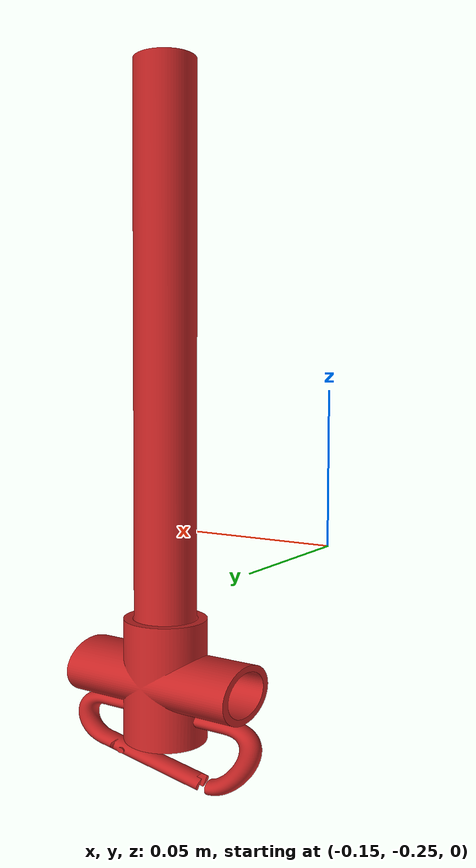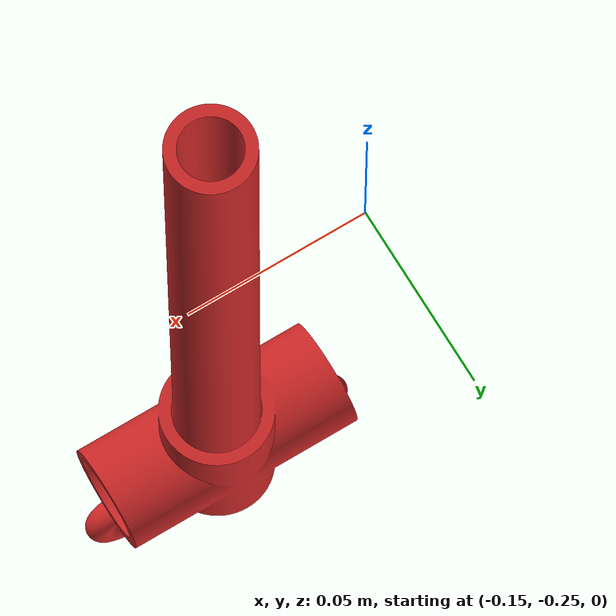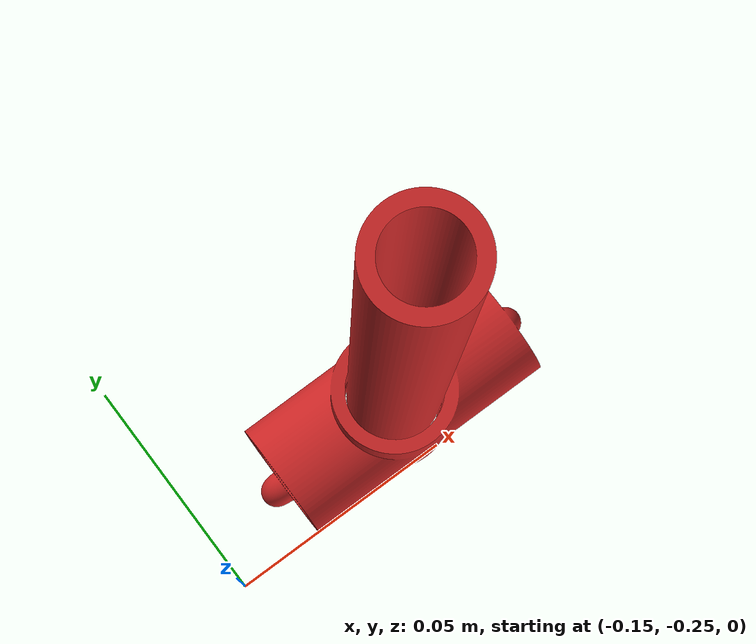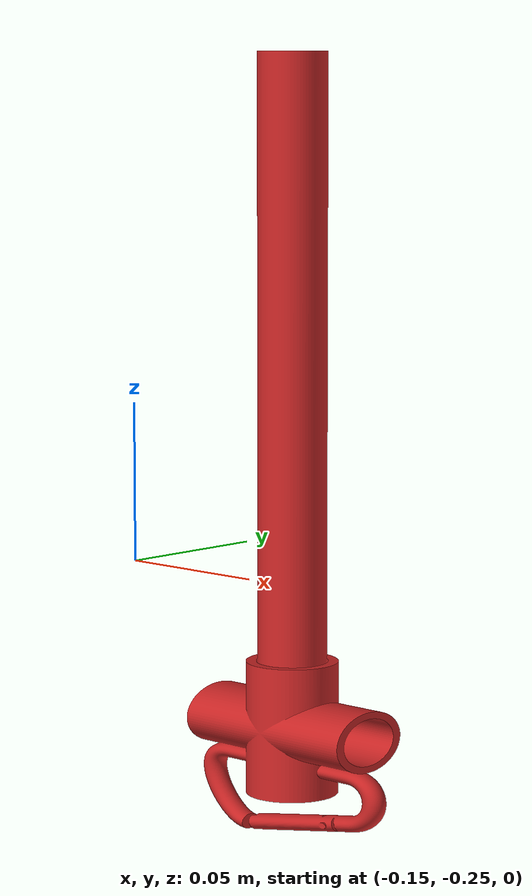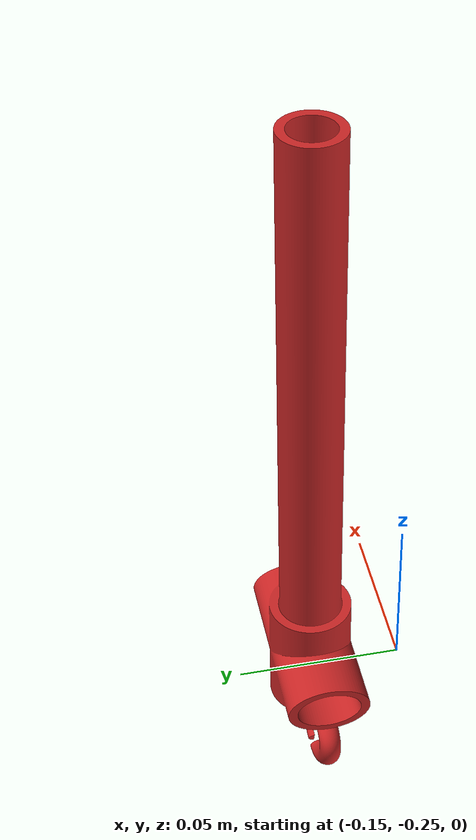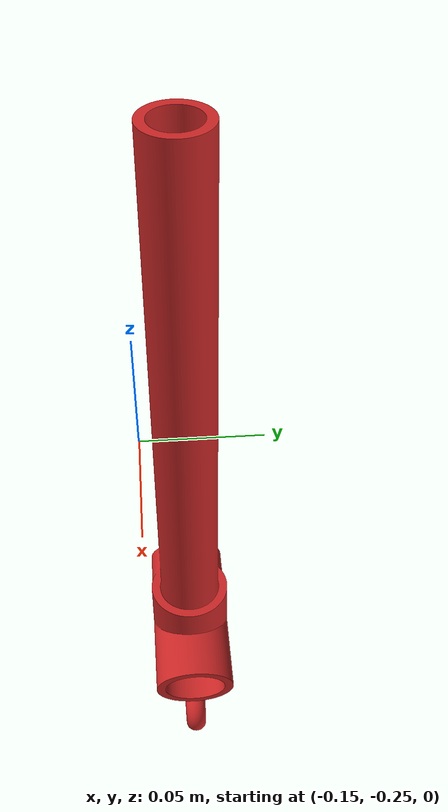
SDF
<?xml version='1.0'?>
<sdf version='1.7'>
  <model name='recovery_line'>
    <link name='part_1'>
      <inertial>
        <pose>0 0 0 0 -0 0</pose>
        <mass>2</mass>
        <inertia>
          <ixx>0</ixx>
          <ixy>0</ixy>
          <ixz>0</ixz>
          <iyy>0</iyy>
          <iyz>0</iyz>
          <izz>0</izz>
        </inertia>
      </inertial>
      <self_collide>0</self_collide>
      <enable_wind>0</enable_wind>
      <kinematic>0</kinematic>
      <pose>-0.087877 -0.216714 -0 -3.14156 -1.57079 3.14155</pose>
      <gravity>1</gravity>
      <is_static>1</is_static>
      <frame name='part_1_frame'>
        <pose>0 0 0 0 -0 0</pose>
      </frame>
      <visual name='assembly_visual'>
        <pose>-0.03 0 0 0 -0 0</pose>
        <geometry>
          <mesh>
            <uri>/home/eer/Documents/Software_2024/ROS2/models/recovery_line/recovery_line_visual.stl</uri>
            <scale>0.65 1 1</scale>
          </mesh>
        </geometry>
        <material>
          <shader type='pixel'>
            <normal_map>__default__</normal_map>
          </shader>
          <ambient>1 0.75 0.8 1</ambient>
          <diffuse>1 0.75 0.8 1</diffuse>
          <specular>1 0.75 0.8 1</specular>
          <emissive>0 0 0 1</emissive>
          <script>
            <name>Gazebo/Red</name>
            <uri>__default__</uri>
          </script>
        </material>
        <transparency>0</transparency>
        <cast_shadows>1</cast_shadows>
      </visual>
      <collision name='collision_2'>
        <laser_retro>0</laser_retro>
        <max_contacts>10</max_contacts>
        <pose>-0.08 -0.02 0.01 0 -0 0</pose>
        <geometry>
          <box>
            <size>0.012439 0.068575 0.11489</size>
          </box>
        </geometry>
        <surface>
          <friction>
            <ode>
              <mu>1</mu>
              <mu2>1</mu2>
              <fdir1>0 0 0</fdir1>
              <slip1>0</slip1>
              <slip2>0</slip2>
            </ode>
            <torsional>
              <coefficient>1</coefficient>
              <patch_radius>0</patch_radius>
              <surface_radius>0</surface_radius>
              <use_patch_radius>1</use_patch_radius>
              <ode>
                <slip>0</slip>
              </ode>
            </torsional>
          </friction>
          <bounce>
            <restitution_coefficient>0</restitution_coefficient>
            <threshold>1e+06</threshold>
          </bounce>
          <contact>
            <collide_without_contact>0</collide_without_contact>
            <collide_without_contact_bitmask>1</collide_without_contact_bitmask>
            <collide_bitmask>1</collide_bitmask>
            <ode>
              <soft_cfm>0</soft_cfm>
              <soft_erp>0.2</soft_erp>
              <kp>1e+13</kp>
              <kd>1</kd>
              <max_vel>0.01</max_vel>
              <min_depth>0</min_depth>
            </ode>
            <bullet>
              <split_impulse>1</split_impulse>
              <split_impulse_penetration_threshold>-0.01</split_impulse_penetration_threshold>
              <soft_cfm>0</soft_cfm>
              <soft_erp>0.2</soft_erp>
              <kp>1e+13</kp>
              <kd>1</kd>
            </bullet>
          </contact>
        </surface>
      </collision>
      <collision name='collision_3'>
        <laser_retro>0</laser_retro>
        <max_contacts>10</max_contacts>
        <pose>0.15 -0.02 0.01 0 -0 0</pose>
        <geometry>
          <box>
            <size>0.012439 0.068575 0.11489</size>
          </box>
        </geometry>
        <surface>
          <friction>
            <ode>
              <mu>1</mu>
              <mu2>1</mu2>
              <fdir1>0 0 0</fdir1>
              <slip1>0</slip1>
              <slip2>0</slip2>
            </ode>
            <torsional>
              <coefficient>1</coefficient>
              <patch_radius>0</patch_radius>
              <surface_radius>0</surface_radius>
              <use_patch_radius>1</use_patch_radius>
              <ode>
                <slip>0</slip>
              </ode>
            </torsional>
          </friction>
          <bounce>
            <restitution_coefficient>0</restitution_coefficient>
            <threshold>1e+06</threshold>
          </bounce>
          <contact>
            <collide_without_contact>0</collide_without_contact>
            <collide_without_contact_bitmask>1</collide_without_contact_bitmask>
            <collide_bitmask>1</collide_bitmask>
            <ode>
              <soft_cfm>0</soft_cfm>
              <soft_erp>0.2</soft_erp>
              <kp>1e+13</kp>
              <kd>1</kd>
              <max_vel>0.01</max_vel>
              <min_depth>0</min_depth>
            </ode>
            <bullet>
              <split_impulse>1</split_impulse>
              <split_impulse_penetration_threshold>-0.01</split_impulse_penetration_threshold>
              <soft_cfm>0</soft_cfm>
              <soft_erp>0.2</soft_erp>
              <kp>1e+13</kp>
              <kd>1</kd>
            </bullet>
          </contact>
        </surface>
      </collision>
      <collision name='collision_1'>
        <laser_retro>0</laser_retro>
        <max_contacts>10</max_contacts>
        <pose>0.04 -0.02 0.01 0 -0 0</pose>
        <geometry>
          <box>
            <size>0.232439 0.028575 0.03489</size>
          </box>
        </geometry>
        <surface>
          <friction>
            <ode>
              <mu>1</mu>
              <mu2>1</mu2>
              <fdir1>0 0 0</fdir1>
              <slip1>0</slip1>
              <slip2>0</slip2>
            </ode>
            <torsional>
              <coefficient>1</coefficient>
              <patch_radius>0</patch_radius>
              <surface_radius>0</surface_radius>
              <use_patch_radius>1</use_patch_radius>
              <ode>
                <slip>0</slip>
              </ode>
            </torsional>
          </friction>
          <bounce>
            <restitution_coefficient>0</restitution_coefficient>
            <threshold>1e+06</threshold>
          </bounce>
          <contact>
            <collide_without_contact>0</collide_without_contact>
            <collide_without_contact_bitmask>1</collide_without_contact_bitmask>
            <collide_bitmask>1</collide_bitmask>
            <ode>
              <soft_cfm>0</soft_cfm>
              <soft_erp>0.2</soft_erp>
              <kp>1e+13</kp>
              <kd>1</kd>
              <max_vel>0.01</max_vel>
              <min_depth>0</min_depth>
            </ode>
            <bullet>
              <split_impulse>1</split_impulse>
              <split_impulse_penetration_threshold>-0.01</split_impulse_penetration_threshold>
              <soft_cfm>0</soft_cfm>
              <soft_erp>0.2</soft_erp>
              <kp>1e+13</kp>
              <kd>1</kd>
            </bullet>
          </contact>
        </surface>
      </collision>
    </link>
    <static>0</static>
    <allow_auto_disable>1</allow_auto_disable>
  </model>
</sdf>
